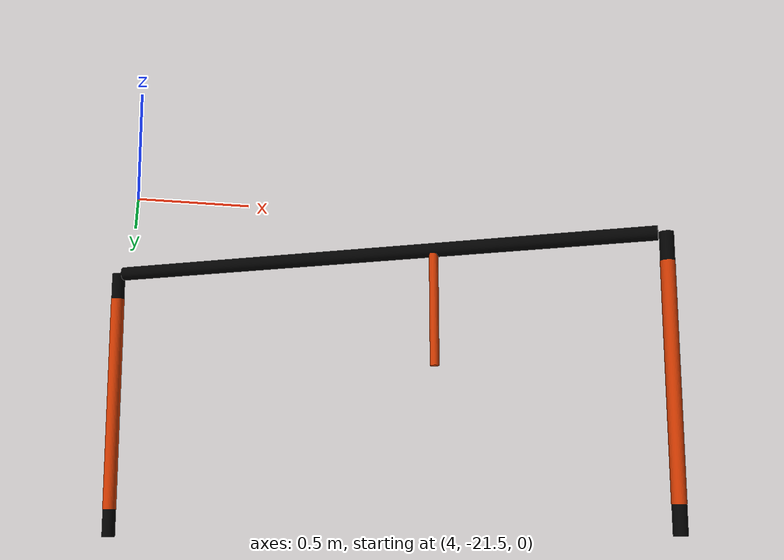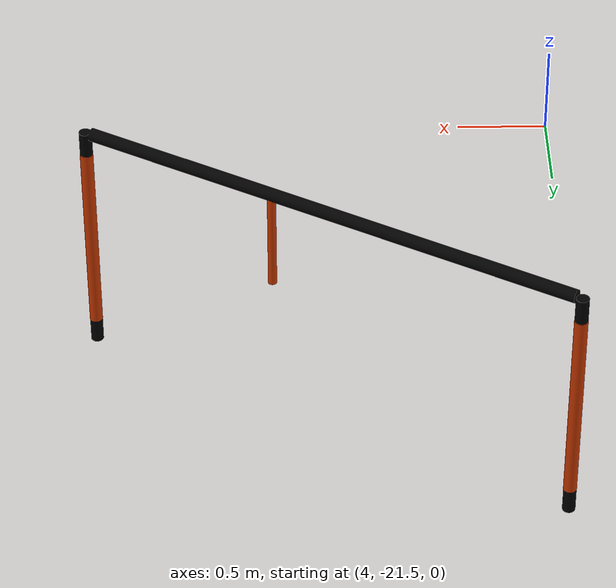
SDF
<?xml version="1.0"?>
<sdf version='1.9'>
  <model name='startgate'>
    <static>true</static>

    <link name='startgate'>
      <pose frame=''>4 -10 0 0 -0 -0.2617</pose>
      <inertial>
        <pose frame=''>4 -10 0 0 -0 -0.2617</pose>
        <mass>1</mass>
        <inertia>
          <ixx>0.166667</ixx>
          <ixy>0</ixy>
          <ixz>0</ixz>
          <iyy>0.166667</iyy>
          <iyz>0</iyz>
          <izz>0.166667</izz>
        </inertia>
      </inertial>
      <collision name='startgate_collision'>
        <pose frame=''>4 -10 0 0 -0 -0.2617</pose>
        <geometry>
          <mesh>
            <uri>model://startgate/startgate.dae</uri>
          </mesh>
        </geometry>
      </collision>
      <visual name='startgate_visual'>
        <pose frame=''>4 -10 0 0 -0 -0.2617</pose>
        <geometry>
          <mesh>
            <uri>model://startgate/startgate.dae</uri>
          </mesh>
        </geometry>
      </visual>
    </link>
  </model>
</sdf>
